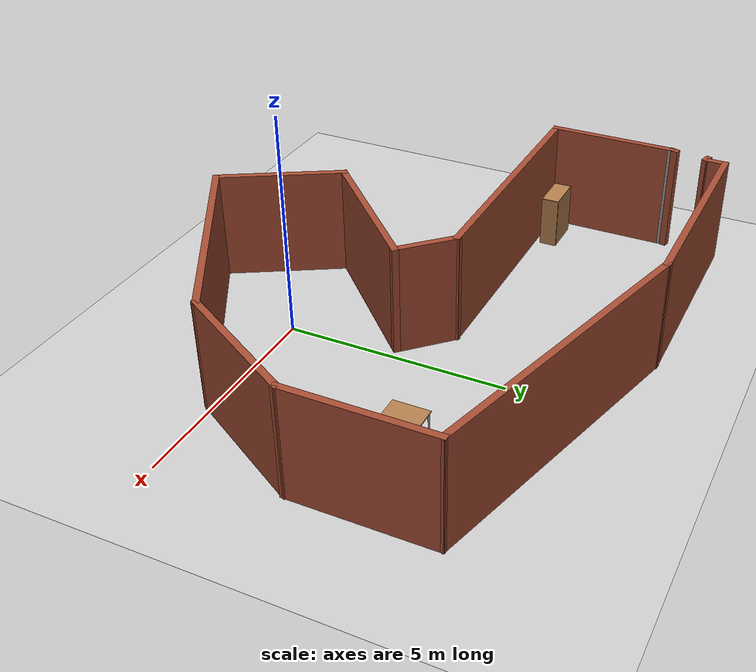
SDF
<sdf version="1.7">
 <world name="default">
  <plugin name="gazebo_occupancy_map" filename="libgazebo_2Dmap_plugin.so">
   <map_resolution>0.05</map_resolution>
   <map_height>0.132</map_height>
   <map_size_x>15</map_size_x>
   <map_size_y>15</map_size_y>
   <init_robot_x>-2.0</init_robot_x>
   <init_robot_y>-0.5</init_robot_y>
  </plugin>
  <light name="sun" type="directional">
   <pose>0 0 10 0 -0 0</pose>
   <diffuse>0.8 0.8 0.8 1</diffuse>
   <specular>0.2 0.2 0.2 1</specular>
   <attenuation>
    <range>1000</range>
    <constant>0.9</constant>
    <linear>0.01</linear>
    <quadratic>0.001</quadratic>
   </attenuation>
   <direction>-0.5 0.1 -0.9</direction>
   <spot><inner_angle>0</inner_angle><outer_angle>0</outer_angle><falloff>0</falloff></spot>
  </light>
  <model name="ground_plane">
   <static>1</static>
   <link name="link">
    <collision name="collision">
     <geometry><plane><normal>0 0 1</normal><size>100 100</size></plane></geometry>
     <surface>
      <contact><collide_bitmask>65535</collide_bitmask></contact>
      <friction><ode><mu>100</mu><mu2>50</mu2></ode></friction>
     </surface>
    </collision>
    <visual name="visual">
     <cast_shadows>0</cast_shadows>
     <geometry><plane><normal>0 0 1</normal><size>100 100</size></plane></geometry>
     <material>
      <script><uri>file://media/materials/scripts/gazebo.material</uri><name>Gazebo/Grey</name></script>
     </material>
    </visual>
   </link>
  </model>
  <gravity>0 0 -9.8</gravity>
  <magnetic_field>6e-06 2.3e-05 -4.2e-05</magnetic_field>
  <atmosphere type="adiabatic"/>
  <physics type="ode">
   <max_step_size>0.001</max_step_size>
   <real_time_factor>1</real_time_factor>
   <real_time_update_rate>1000</real_time_update_rate>
  </physics>
  <scene><ambient>0.4 0.4 0.4 1</ambient><background>0.7 0.7 0.7 1</background><shadows>1</shadows></scene>
  <spherical_coordinates>
   <surface_model>EARTH_WGS84</surface_model>
   <latitude_deg>0</latitude_deg>
   <longitude_deg>0</longitude_deg>
   <elevation>0</elevation>
   <heading_deg>0</heading_deg>
  </spherical_coordinates>
  <model name="c-shaped-room">
   <pose>-1.22776 2.48123 0 0 -0 0</pose>
   <link name="Wall_0">
    <collision name="Wall_0_Collision">
     <geometry><box><size>0.5 0.15 2.5</size></box></geometry>
     <pose>0 0 1.25 0 -0 0</pose>
    </collision>
    <visual name="Wall_0_Visual">
     <pose>0 0 1.25 0 -0 0</pose>
     <geometry><box><size>0.5 0.15 2.5</size></box></geometry>
     <material>
      <script><uri>file://media/materials/scripts/gazebo.material</uri><name>Gazebo/Bricks</name></script>
      <ambient>1 1 1 1</ambient>
     </material>
     <meta><layer>0</layer></meta>
    </visual>
    <pose>-5.64652 4.83002 0 0 -0 1.5708</pose>
   </link>
   <link name="Wall_1">
    <collision name="Wall_1_Collision">
     <geometry><box><size>5 0.15 2.5</size></box></geometry>
     <pose>0 0 1.25 0 -0 0</pose>
    </collision>
    <visual name="Wall_1_Visual">
     <pose>0 0 1.25 0 -0 0</pose>
     <geometry><box><size>5 0.15 2.5</size></box></geometry>
     <material>
      <script><uri>file://media/materials/scripts/gazebo.material</uri><name>Gazebo/Bricks</name></script>
      <ambient>1 1 1 1</ambient>
     </material>
     <meta><layer>0</layer></meta>
    </visual>
    <pose>-3.22152 5.00502 0 0 -0 0</pose>
   </link>
   <link name="Wall_10">
    <collision name="Wall_10_Collision">
     <geometry><box><size>3 0.15 2.5</size></box></geometry>
     <pose>0 0 1.25 0 -0 0</pose>
    </collision>
    <visual name="Wall_10_Visual">
     <pose>0 0 1.25 0 -0 0</pose>
     <geometry><box><size>3 0.15 2.5</size></box></geometry>
     <material>
      <script><uri>file://media/materials/scripts/gazebo.material</uri><name>Gazebo/Bricks</name></script>
      <ambient>1 1 1 1</ambient>
     </material>
     <meta><layer>0</layer></meta>
    </visual>
    <pose>-5.83067 2.29078 0 0 -0 1.5708</pose>
   </link>
   <link name="Wall_11">
    <collision name="Wall_11_Collision">
     <geometry><box><size>0.15 0.15 2.5</size></box></geometry>
     <pose>0 0 1.25 0 -0 0</pose>
    </collision>
    <visual name="Wall_11_Visual">
     <pose>0 0 1.25 0 -0 0</pose>
     <geometry><box><size>0.15 0.15 2.5</size></box></geometry>
     <material>
      <script><uri>file://media/materials/scripts/gazebo.material</uri><name>Gazebo/Grey</name></script>
      <ambient>1 1 1 1</ambient>
     </material>
     <meta><layer>0</layer></meta>
    </visual>
    <pose>-5.83067 3.71578 0 0 -0 0</pose>
   </link>
   <link name="Wall_12">
    <collision name="Wall_12_Collision">
     <geometry><box><size>0.25 0.15 2.5</size></box></geometry>
     <pose>0 0 1.25 0 -0 0</pose>
    </collision>
    <visual name="Wall_12_Visual">
     <pose>0 0 1.25 0 -0 0</pose>
     <geometry><box><size>0.25 0.15 2.5</size></box></geometry>
     <material>
      <script><uri>file://media/materials/scripts/gazebo.material</uri><name>Gazebo/Bricks</name></script>
      <ambient>1 1 1 1</ambient>
     </material>
     <meta><layer>0</layer></meta>
    </visual>
    <pose>-5.81773 3.76408 0 0 -0 1.309</pose>
   </link>
   <link name="Wall_2">
    <collision name="Wall_2_Collision">
     <geometry><box><size>7 0.15 2.5</size></box></geometry>
     <pose>0 0 1.25 0 -0 0</pose>
    </collision>
    <visual name="Wall_2_Visual">
     <pose>0 0 1.25 0 -0 0</pose>
     <geometry><box><size>7 0.15 2.5</size></box></geometry>
     <material>
      <script><uri>file://media/materials/scripts/gazebo.material</uri><name>Gazebo/Bricks</name></script>
      <ambient>1 1 1 1</ambient>
     </material>
     <meta><layer>0</layer></meta>
    </visual>
    <pose>2.51178 4.11857 0 0 -0 -0.261799</pose>
   </link>
   <link name="Wall_3">
    <collision name="Wall_3_Collision">
     <geometry><box><size>3.25 0.15 2.5</size></box></geometry>
     <pose>0 0 1.25 0 -0 0</pose>
    </collision>
    <visual name="Wall_3_Visual">
     <pose>0 0 1.25 0 -0 0</pose>
     <geometry><box><size>3.25 0.15 2.5</size></box></geometry>
     <material>
      <script><uri>file://media/materials/scripts/gazebo.material</uri><name>Gazebo/Bricks</name></script>
      <ambient>1 1 1 1</ambient>
     </material>
     <meta><layer>0</layer></meta>
    </visual>
    <pose>5.82007 1.68211 0 0 -0 -1.5708</pose>
   </link>
   <link name="Wall_4">
    <collision name="Wall_4_Collision">
     <geometry><box><size>3.25 0.15 2.5</size></box></geometry>
     <pose>0 0 1.25 0 -0 0</pose>
    </collision>
    <visual name="Wall_4_Visual">
     <pose>0 0 1.25 0 -0 0</pose>
     <geometry><box><size>3.25 0.15 2.5</size></box></geometry>
     <material>
      <script><uri>file://media/materials/scripts/gazebo.material</uri><name>Gazebo/Bricks</name></script>
      <ambient>1 1 1 1</ambient>
     </material>
     <meta><layer>0</layer></meta>
    </visual>
    <pose>5.04507 -1.21023 0 0 -0 -2.0944</pose>
   </link>
   <link name="Wall_5">
    <collision name="Wall_5_Collision">
     <geometry><box><size>5.25 0.15 2.5</size></box></geometry>
     <pose>0 0 1.25 0 -0 0</pose>
    </collision>
    <visual name="Wall_5_Visual">
     <pose>0 0 1.25 0 -0 0</pose>
     <geometry><box><size>5.25 0.15 2.5</size></box></geometry>
     <material>
      <script><uri>file://media/materials/scripts/gazebo.material</uri><name>Gazebo/Bricks</name></script>
      <ambient>1 1 1 1</ambient>
     </material>
     <meta><layer>0</layer></meta>
    </visual>
    <pose>2.06171 -3.82757 0 0 -0 -2.61799</pose>
   </link>
   <link name="Wall_6">
    <collision name="Wall_6_Collision">
     <geometry><box><size>3 0.15 2.5</size></box></geometry>
     <pose>0 0 1.25 0 -0 0</pose>
    </collision>
    <visual name="Wall_6_Visual">
     <pose>0 0 1.25 0 -0 0</pose>
     <geometry><box><size>3 0.15 2.5</size></box></geometry>
     <material>
      <script><uri>file://media/materials/scripts/gazebo.material</uri><name>Gazebo/Bricks</name></script>
      <ambient>1 1 1 1</ambient>
     </material>
     <meta><layer>0</layer></meta>
    </visual>
    <pose>-0.859158 -3.86848 0 0 -0 2.0944</pose>
   </link>
   <link name="Wall_7">
    <collision name="Wall_7_Collision">
     <geometry><box><size>3.75 0.15 2.5</size></box></geometry>
     <pose>0 0 1.25 0 -0 0</pose>
    </collision>
    <visual name="Wall_7_Visual">
     <pose>0 0 1.25 0 -0 0</pose>
     <geometry><box><size>3.75 0.15 2.5</size></box></geometry>
     <material>
      <script><uri>file://media/materials/scripts/gazebo.material</uri><name>Gazebo/Bricks</name></script>
      <ambient>1 1 1 1</ambient>
     </material>
     <meta><layer>0</layer></meta>
    </visual>
    <pose>-0.298866 -1.3616 0 0 -0 0.785398</pose>
   </link>
   <link name="Wall_8">
    <collision name="Wall_8_Collision">
     <geometry><box><size>1.5 0.15 2.5</size></box></geometry>
     <pose>0 0 1.25 0 -0 0</pose>
    </collision>
    <visual name="Wall_8_Visual">
     <pose>0 0 1.25 0 -0 0</pose>
     <geometry><box><size>1.5 0.15 2.5</size></box></geometry>
     <material>
      <script><uri>file://media/materials/scripts/gazebo.material</uri><name>Gazebo/Bricks</name></script>
      <ambient>1 1 1 1</ambient>
     </material>
     <meta><layer>0</layer></meta>
    </visual>
    <pose>0.49663 0.388485 0 0 -0 2.35619</pose>
   </link>
   <link name="Wall_9">
    <collision name="Wall_9_Collision">
     <geometry><box><size>6 0.15 2.5</size></box></geometry>
     <pose>0 0 1.25 0 -0 0</pose>
    </collision>
    <visual name="Wall_9_Visual">
     <pose>0 0 1.25 0 -0 0</pose>
     <geometry><box><size>6 0.15 2.5</size></box></geometry>
     <material>
      <script><uri>file://media/materials/scripts/gazebo.material</uri><name>Gazebo/Bricks</name></script>
      <ambient>1 1 1 1</ambient>
     </material>
     <meta><layer>0</layer></meta>
    </visual>
    <pose>-2.90567 0.865782 0 0 -0 3.14159</pose>
   </link>
   <static>1</static>
  </model>
  <model name="table">
   <static>1</static>
   <link name="link">
    <collision name="surface">
     <pose>0 0 1 0 -0 0</pose>
     <geometry><box><size>1.5 0.8 0.03</size></box></geometry>
     <surface><friction><ode><mu>0.6</mu><mu2>0.6</mu2></ode></friction></surface>
    </collision>
    <visual name="visual1">
     <pose>0 0 1 0 -0 0</pose>
     <geometry><box><size>1.5 0.8 0.03</size></box></geometry>
     <material>
      <script><uri>file://media/materials/scripts/gazebo.material</uri><name>Gazebo/Wood</name></script>
     </material>
    </visual>
    <collision name="front_left_leg">
     <pose>0.68 0.38 0.5 0 -0 0</pose>
     <geometry><cylinder><radius>0.02</radius><length>1</length></cylinder></geometry>
    </collision>
    <visual name="front_left_leg">
     <pose>0.68 0.38 0.5 0 -0 0</pose>
     <geometry><cylinder><radius>0.02</radius><length>1</length></cylinder></geometry>
     <material>
      <script><uri>file://media/materials/scripts/gazebo.material</uri><name>Gazebo/Grey</name></script>
     </material>
    </visual>
    <collision name="front_right_leg">
     <pose>0.68 -0.38 0.5 0 -0 0</pose>
     <geometry><cylinder><radius>0.02</radius><length>1</length></cylinder></geometry>
    </collision>
    <visual name="front_right_leg">
     <pose>0.68 -0.38 0.5 0 -0 0</pose>
     <geometry><cylinder><radius>0.02</radius><length>1</length></cylinder></geometry>
     <material>
      <script><uri>file://media/materials/scripts/gazebo.material</uri><name>Gazebo/Grey</name></script>
     </material>
    </visual>
    <collision name="back_right_leg">
     <pose>-0.68 -0.38 0.5 0 -0 0</pose>
     <geometry><cylinder><radius>0.02</radius><length>1</length></cylinder></geometry>
    </collision>
    <visual name="back_right_leg">
     <pose>-0.68 -0.38 0.5 0 -0 0</pose>
     <geometry><cylinder><radius>0.02</radius><length>1</length></cylinder></geometry>
     <material>
      <script><uri>file://media/materials/scripts/gazebo.material</uri><name>Gazebo/Grey</name></script>
     </material>
    </visual>
    <collision name="back_left_leg">
     <pose>-0.68 0.38 0.5 0 -0 0</pose>
     <geometry><cylinder><radius>0.02</radius><length>1</length></cylinder></geometry>
    </collision>
    <visual name="back_left_leg">
     <pose>-0.68 0.38 0.5 0 -0 0</pose>
     <geometry><cylinder><radius>0.02</radius><length>1</length></cylinder></geometry>
     <material>
      <script><uri>file://media/materials/scripts/gazebo.material</uri><name>Gazebo/Grey</name></script>
     </material>
    </visual>
   </link>
   <pose>3.17803 4.084 0 0 -0 0</pose>
  </model>
  <model name="bookshelf">
   <static>1</static>
   <link name="link">
    <inertial><mass>1</mass></inertial>
    <collision name="back">
     <pose>0 0.005 0.6 0 -0 0</pose>
     <geometry><box><size>0.9 0.01 1.2</size></box></geometry>
    </collision>
    <visual name="visual1">
     <pose>0 0.005 0.6 0 -0 0</pose>
     <geometry><box><size>0.9 0.01 1.2</size></box></geometry>
     <material>
      <script><uri>file://media/materials/scripts/gazebo.material</uri><name>Gazebo/Wood</name></script>
     </material>
    </visual>
    <collision name="left_side">
     <pose>0.45 -0.195 0.6 0 -0 0</pose>
     <geometry><box><size>0.02 0.4 1.2</size></box></geometry>
    </collision>
    <visual name="visual2">
     <pose>0.45 -0.195 0.6 0 -0 0</pose>
     <geometry><box><size>0.02 0.4 1.2</size></box></geometry>
     <material>
      <script><uri>file://media/materials/scripts/gazebo.material</uri><name>Gazebo/Wood</name></script>
     </material>
    </visual>
    <collision name="right_side">
     <pose>-0.45 -0.195 0.6 0 -0 0</pose>
     <geometry><box><size>0.02 0.4 1.2</size></box></geometry>
    </collision>
    <visual name="visual3">
     <pose>-0.45 -0.195 0.6 0 -0 0</pose>
     <geometry><box><size>0.02 0.4 1.2</size></box></geometry>
     <material>
      <script><uri>file://media/materials/scripts/gazebo.material</uri><name>Gazebo/Wood</name></script>
     </material>
    </visual>
    <collision name="bottom">
     <pose>0 -0.195 0.03 0 -0 0</pose>
     <geometry><box><size>0.88 0.4 0.06</size></box></geometry>
    </collision>
    <visual name="visual4">
     <pose>0 -0.195 0.03 0 -0 0</pose>
     <geometry><box><size>0.88 0.4 0.06</size></box></geometry>
     <material>
      <script><uri>file://media/materials/scripts/gazebo.material</uri><name>Gazebo/Wood</name></script>
     </material>
    </visual>
    <collision name="top">
     <pose>0 -0.195 1.19 0 -0 0</pose>
     <geometry><box><size>0.88 0.4 0.02</size></box></geometry>
    </collision>
    <visual name="visual5">
     <pose>0 -0.195 1.19 0 -0 0</pose>
     <geometry><box><size>0.88 0.4 0.02</size></box></geometry>
     <material>
      <script><uri>file://media/materials/scripts/gazebo.material</uri><name>Gazebo/Wood</name></script>
     </material>
    </visual>
    <collision name="low_shelf">
     <pose>0 -0.195 0.43 0 -0 0</pose>
     <geometry><box><size>0.88 0.4 0.02</size></box></geometry>
    </collision>
    <visual name="visual6">
     <pose>0 -0.195 0.43 0 -0 0</pose>
     <geometry><box><size>0.88 0.4 0.02</size></box></geometry>
     <material>
      <script><uri>file://media/materials/scripts/gazebo.material</uri><name>Gazebo/Wood</name></script>
     </material>
    </visual>
    <collision name="high_shelf">
     <pose>0 -0.195 0.8 0 -0 0</pose>
     <geometry><box><size>0.88 0.4 0.02</size></box></geometry>
    </collision>
    <visual name="visual7">
     <pose>0 -0.195 0.8 0 -0 0</pose>
     <geometry><box><size>0.88 0.4 0.02</size></box></geometry>
     <material>
      <script><uri>file://media/materials/scripts/gazebo.material</uri><name>Gazebo/Wood</name></script>
     </material>
    </visual>
   </link>
   <pose>-6.25741 3.93008 0 0 -0 0</pose>
  </model>
  <model name="gap-filler">
   <pose>-4.91088 9.77329 0 0 0 -0.216897</pose>
   <link name="Wall_4">
    <collision name="Wall_4_Collision">
     <geometry><box><size>0.25 0.15 2.5</size></box></geometry>
     <pose>0 0 1.25 0 -0 0</pose>
    </collision>
    <visual name="Wall_4_Visual">
     <pose>0 0 1.25 0 -0 0</pose>
     <geometry><box><size>0.25 0.15 2.5</size></box></geometry>
     <material>
      <script><uri>file://media/materials/scripts/gazebo.material</uri><name>Gazebo/Bricks</name></script>
      <ambient>1 1 1 1</ambient>
     </material>
     <meta><layer>0</layer></meta>
    </visual>
    <pose>-1.38938 -3.0906 0 0 -0 3.14159</pose>
   </link>
   <static>1</static>
  </model>
 </world>
</sdf>
